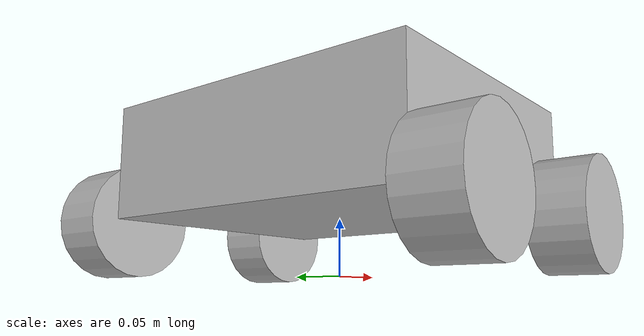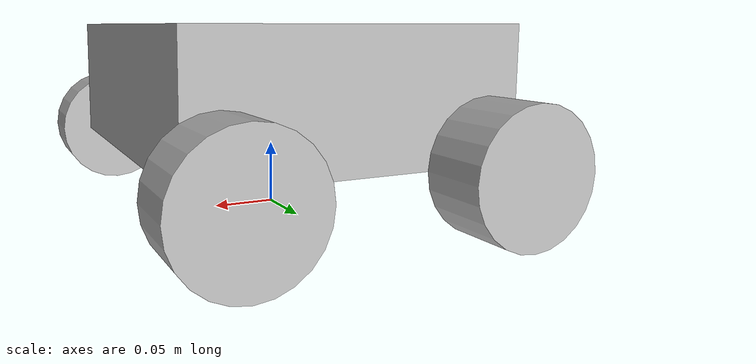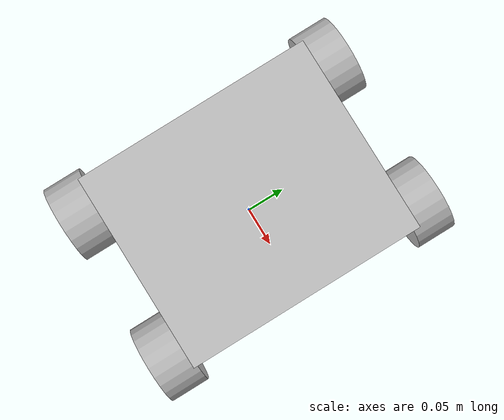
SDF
<?xml version='1.0'?>
<sdf version='1.4'>
  <model name="nucobot">
  	<static>false</static>
  		<link name='chassis'>
            <pose>0 0 .1 0 0 0</pose>

            <collision name='collision'>
              <geometry>
                <box>
                  <size>.25 .3 .1</size>
                </box>
              </geometry>
            </collision>

            <visual name='visual'>
              <geometry>
                <box>
                  <size>.25 .3 .1</size>
                </box>
              </geometry>
            </visual>
      </link>
      <link name="left_front_wheel">
        <pose>0.1 0.175 0.05 0 1.5707 1.5707</pose>
        <collision name="collision">
          <geometry>
            <cylinder>
              <radius>.05</radius>
              <length>.05</length>
            </cylinder>
          </geometry>
        </collision>
        <visual name="visual">
          <geometry>
            <cylinder>
              <radius>.05</radius>
              <length>.05</length>
            </cylinder>
          </geometry>
        </visual>
      </link>
      <link name="right_front_wheel">
        <pose>0.1 -0.175 0.05 0 1.5707 1.5707</pose>
        <collision name="collision">
          <geometry>
            <cylinder>
              <radius>.05</radius>
              <length>.05</length>
            </cylinder>
          </geometry>
        </collision>
        <visual name="visual">
          <geometry>
            <cylinder>
              <radius>.05</radius>
              <length>.05</length>
            </cylinder>
          </geometry>
        </visual>
      </link>
      <link name="left_back_wheel">
        <pose>-0.1 0.175 0.05 0 1.5707 1.5707</pose>
        <collision name="collision">
          <geometry>
            <cylinder>
              <radius>.05</radius>
              <length>.05</length>
            </cylinder>
          </geometry>
        </collision>
        <visual name="visual">
          <geometry>
            <cylinder>
              <radius>.05</radius>
              <length>.05</length>
            </cylinder>
          </geometry>
        </visual>
      </link>
      <link name="right_back_wheel">
        <pose>-0.1 -0.175 0.05 0 1.5707 1.5707</pose>
        <collision name="collision">
          <geometry>
            <cylinder>
              <radius>.05</radius>
              <length>.05</length>
            </cylinder>
          </geometry>
        </collision>
        <visual name="visual">
          <geometry>
            <cylinder>
              <radius>.05</radius>
              <length>.05</length>
            </cylinder>
          </geometry>
        </visual>
      </link>

      <joint type="revolute" name="left_front_wheel_hinge">
        <pose>0 0 -0.03 0 0 0</pose>
        <child>left_front_wheel</child>
        <parent>chassis</parent>
        <axis>
          <xyz>0 1 0</xyz>
        </axis>
      </joint>

      <joint type="revolute" name="right_front_wheel_hinge">
        <pose>0 0 0.03 0 0 0</pose>
        <child>right_front_wheel</child>
        <parent>chassis</parent>
        <axis>
          <xyz>0 1 0</xyz>
        </axis>
      </joint>
      <joint type="revolute" name="left_back_wheel_hinge">
        <pose>0 0 -0.03 0 0 0</pose>
        <child>left_back_wheel</child>
        <parent>chassis</parent>
        <axis>
          <xyz>0 1 0</xyz>
        </axis>
      </joint>

      <joint type="revolute" name="right_back_wheel_hinge">
        <pose>0 0 0.03 0 0 0</pose>
        <child>right_back_wheel</child>
        <parent>chassis</parent>
        <axis>
          <xyz>0 1 0</xyz>
        </axis>
      </joint>
  </model>
</sdf>
